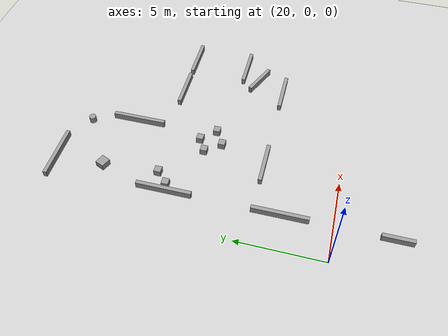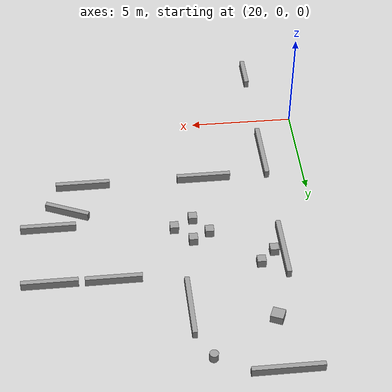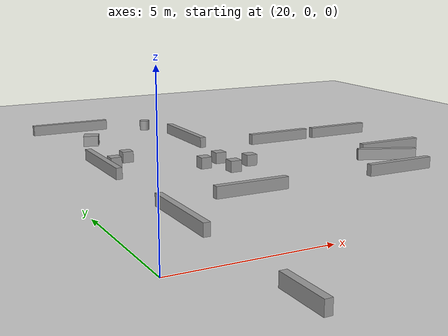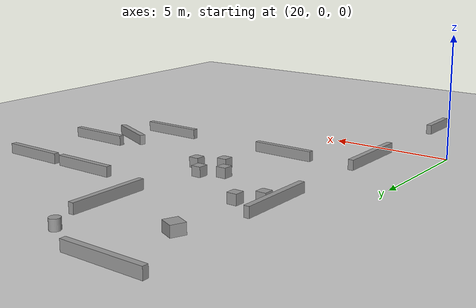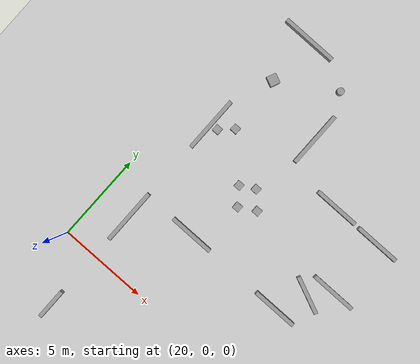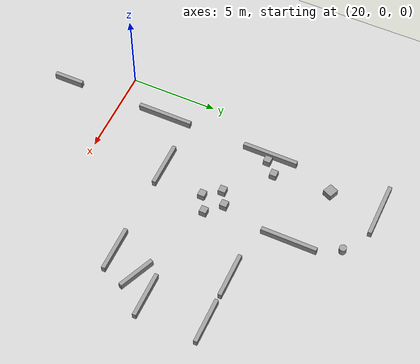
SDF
<sdf version="1.6">
 <world name="default">
  <model name="ground_plane">
   <static>1</static>
   <link name="link">
    <collision name="collision">
     <geometry><plane><normal>0 0 1</normal><size>100 100</size></plane></geometry>
     <surface>
      <contact><collide_bitmask>65535</collide_bitmask></contact>
      <friction><ode><mu>100</mu><mu2>50</mu2></ode></friction>
     </surface>
    </collision>
    <visual name="visual">
     <cast_shadows>0</cast_shadows>
     <geometry><plane><normal>0 0 1</normal><size>100 100</size></plane></geometry>
     <material>
      <script><uri>file://media/materials/scripts/gazebo.material</uri><name>Gazebo/Grey</name></script>
     </material>
    </visual>
   </link>
  </model>
  <model name="maze">
   <link name="link_10">
    <pose>9.80009 2.02423 9e-06 0 -0 0</pose>
    <inertial>
     <mass>1</mass>
     <inertia>
      <ixx>0.166667</ixx>
      <ixy>0</ixy>
      <ixz>0</ixz>
      <iyy>0.166667</iyy>
      <iyz>0</iyz>
      <izz>0.166667</izz>
     </inertia>
    </inertial>
    <visual name="visual">
     <geometry><box><size>0.4 0.4 0.4</size></box></geometry>
     <material>
      <lighting>1</lighting>
      <script><uri>file://media/materials/scripts/gazebo.material</uri><name>Gazebo/Grey</name></script>
      <ambient>0.3 0.3 0.3 1</ambient>
      <diffuse>0.7 0.7 0.7 1</diffuse>
      <specular>0.01 0.01 0.01 1</specular>
      <emissive>0 0 0 1</emissive>
     </material>
    </visual>
    <collision name="collision">
     <geometry><box><size>0.4 0.4 0.4</size></box></geometry>
     <surface>
      <friction>
       <ode><mu>1</mu><mu2>1</mu2><fdir1>0 0 0</fdir1><slip1>0</slip1><slip2>0</slip2></ode>
       <torsional>
        <coefficient>1</coefficient>
        <patch_radius>0</patch_radius>
        <surface_radius>0</surface_radius>
        <use_patch_radius>1</use_patch_radius>
        <ode><slip>0</slip></ode>
       </torsional>
      </friction>
      <bounce><restitution_coefficient>0</restitution_coefficient><threshold>1e+06</threshold></bounce>
      <contact>
       <collide_without_contact>0</collide_without_contact>
       <collide_without_contact_bitmask>1</collide_without_contact_bitmask>
       <collide_bitmask>1</collide_bitmask>
       <ode>
        <soft_cfm>0</soft_cfm>
        <soft_erp>0.2</soft_erp>
        <kp>1e+13</kp>
        <kd>1</kd>
        <max_vel>0.01</max_vel>
        <min_depth>0</min_depth>
       </ode>
       <bullet>
        <split_impulse>1</split_impulse>
        <split_impulse_penetration_threshold>-0.01</split_impulse_penetration_threshold>
        <soft_cfm>0</soft_cfm>
        <soft_erp>0.2</soft_erp>
        <kp>1e+13</kp>
        <kd>1</kd>
       </bullet>
      </contact>
     </surface>
    </collision>
   </link>
   <link name="link_11">
    <pose>6.31823 4.34711 9e-06 0 -0 0</pose>
    <inertial>
     <mass>1</mass>
     <inertia>
      <ixx>0.166667</ixx>
      <ixy>0</ixy>
      <ixz>0</ixz>
      <iyy>0.166667</iyy>
      <iyz>0</iyz>
      <izz>0.166667</izz>
     </inertia>
    </inertial>
    <visual name="visual">
     <geometry><box><size>0.4 0.4 0.4</size></box></geometry>
     <material>
      <lighting>1</lighting>
      <script><uri>file://media/materials/scripts/gazebo.material</uri><name>Gazebo/Grey</name></script>
      <ambient>0.3 0.3 0.3 1</ambient>
      <diffuse>0.7 0.7 0.7 1</diffuse>
      <specular>0.01 0.01 0.01 1</specular>
      <emissive>0 0 0 1</emissive>
     </material>
    </visual>
    <collision name="collision">
     <geometry><box><size>0.4 0.4 0.4</size></box></geometry>
     <surface>
      <friction>
       <ode><mu>1</mu><mu2>1</mu2><fdir1>0 0 0</fdir1><slip1>0</slip1><slip2>0</slip2></ode>
       <torsional>
        <coefficient>1</coefficient>
        <patch_radius>0</patch_radius>
        <surface_radius>0</surface_radius>
        <use_patch_radius>1</use_patch_radius>
        <ode><slip>0</slip></ode>
       </torsional>
      </friction>
      <bounce><restitution_coefficient>0</restitution_coefficient><threshold>1e+06</threshold></bounce>
      <contact>
       <collide_without_contact>0</collide_without_contact>
       <collide_without_contact_bitmask>1</collide_without_contact_bitmask>
       <collide_bitmask>1</collide_bitmask>
       <ode>
        <soft_cfm>0</soft_cfm>
        <soft_erp>0.2</soft_erp>
        <kp>1e+13</kp>
        <kd>1</kd>
        <max_vel>0.01</max_vel>
        <min_depth>0</min_depth>
       </ode>
       <bullet>
        <split_impulse>1</split_impulse>
        <split_impulse_penetration_threshold>-0.01</split_impulse_penetration_threshold>
        <soft_cfm>0</soft_cfm>
        <soft_erp>0.2</soft_erp>
        <kp>1e+13</kp>
        <kd>1</kd>
       </bullet>
      </contact>
     </surface>
    </collision>
   </link>
   <link name="link_12">
    <pose>7.00494 5.00129 9e-06 0 -0 0</pose>
    <inertial>
     <mass>1</mass>
     <inertia>
      <ixx>0.166667</ixx>
      <ixy>0</ixy>
      <ixz>0</ixz>
      <iyy>0.166667</iyy>
      <iyz>0</iyz>
      <izz>0.166667</izz>
     </inertia>
    </inertial>
    <visual name="visual">
     <geometry><box><size>0.4 0.4 0.4</size></box></geometry>
     <material>
      <lighting>1</lighting>
      <script><uri>file://media/materials/scripts/gazebo.material</uri><name>Gazebo/Grey</name></script>
      <ambient>0.3 0.3 0.3 1</ambient>
      <diffuse>0.7 0.7 0.7 1</diffuse>
      <specular>0.01 0.01 0.01 1</specular>
      <emissive>0 0 0 1</emissive>
     </material>
    </visual>
    <collision name="collision">
     <geometry><box><size>0.4 0.4 0.4</size></box></geometry>
     <surface>
      <friction>
       <ode><mu>1</mu><mu2>1</mu2><fdir1>0 0 0</fdir1><slip1>0</slip1><slip2>0</slip2></ode>
       <torsional>
        <coefficient>1</coefficient>
        <patch_radius>0</patch_radius>
        <surface_radius>0</surface_radius>
        <use_patch_radius>1</use_patch_radius>
        <ode><slip>0</slip></ode>
       </torsional>
      </friction>
      <bounce><restitution_coefficient>0</restitution_coefficient><threshold>1e+06</threshold></bounce>
      <contact>
       <collide_without_contact>0</collide_without_contact>
       <collide_without_contact_bitmask>1</collide_without_contact_bitmask>
       <collide_bitmask>1</collide_bitmask>
       <ode>
        <soft_cfm>0</soft_cfm>
        <soft_erp>0.2</soft_erp>
        <kp>1e+13</kp>
        <kd>1</kd>
        <max_vel>0.01</max_vel>
        <min_depth>0</min_depth>
       </ode>
       <bullet>
        <split_impulse>1</split_impulse>
        <split_impulse_penetration_threshold>-0.01</split_impulse_penetration_threshold>
        <soft_cfm>0</soft_cfm>
        <soft_erp>0.2</soft_erp>
        <kp>1e+13</kp>
        <kd>1</kd>
       </bullet>
      </contact>
     </surface>
    </collision>
   </link>
   <link name="link_14">
    <pose>10.7124 2.54643 9e-06 0 -0 0</pose>
    <inertial>
     <mass>1</mass>
     <inertia>
      <ixx>0.166667</ixx>
      <ixy>0</ixy>
      <ixz>0</ixz>
      <iyy>0.166667</iyy>
      <iyz>0</iyz>
      <izz>0.166667</izz>
     </inertia>
    </inertial>
    <visual name="visual">
     <geometry><box><size>0.4 0.4 0.4</size></box></geometry>
     <material>
      <lighting>1</lighting>
      <script><uri>file://media/materials/scripts/gazebo.material</uri><name>Gazebo/Grey</name></script>
      <ambient>0.3 0.3 0.3 1</ambient>
      <diffuse>0.7 0.7 0.7 1</diffuse>
      <specular>0.01 0.01 0.01 1</specular>
      <emissive>0 0 0 1</emissive>
     </material>
    </visual>
    <collision name="collision">
     <geometry><box><size>0.4 0.4 0.4</size></box></geometry>
     <surface>
      <friction>
       <ode><mu>1</mu><mu2>1</mu2><fdir1>0 0 0</fdir1><slip1>0</slip1><slip2>0</slip2></ode>
       <torsional>
        <coefficient>1</coefficient>
        <patch_radius>0</patch_radius>
        <surface_radius>0</surface_radius>
        <use_patch_radius>1</use_patch_radius>
        <ode><slip>0</slip></ode>
       </torsional>
      </friction>
      <bounce><restitution_coefficient>0</restitution_coefficient><threshold>1e+06</threshold></bounce>
      <contact>
       <collide_without_contact>0</collide_without_contact>
       <collide_without_contact_bitmask>1</collide_without_contact_bitmask>
       <collide_bitmask>1</collide_bitmask>
       <ode>
        <soft_cfm>0</soft_cfm>
        <soft_erp>0.2</soft_erp>
        <kp>1e+13</kp>
        <kd>1</kd>
        <max_vel>0.01</max_vel>
        <min_depth>0</min_depth>
       </ode>
       <bullet>
        <split_impulse>1</split_impulse>
        <split_impulse_penetration_threshold>-0.01</split_impulse_penetration_threshold>
        <soft_cfm>0</soft_cfm>
        <soft_erp>0.2</soft_erp>
        <kp>1e+13</kp>
        <kd>1</kd>
       </bullet>
      </contact>
     </surface>
    </collision>
   </link>
   <link name="link_4_clone_0_clone_clone_1_clone_0_clone_0_clone">
    <pose>6.79233 11.05 9e-06 0 -0 0</pose>
    <inertial>
     <mass>4.30693</mass>
     <inertia><ixx>0.46587</ixx><ixy>0</ixy><ixz>0</ixz><iyy>22.6991</iyy><iyz>0</iyz><izz>22.4471</izz></inertia>
    </inertial>
    <visual name="visual">
     <geometry><box><size>3.1558 0.218362 0.4</size></box></geometry>
     <material>
      <lighting>1</lighting>
      <script><uri>file://media/materials/scripts/gazebo.material</uri><name>Gazebo/Grey</name></script>
      <ambient>0.3 0.3 0.3 1</ambient>
      <diffuse>0.7 0.7 0.7 1</diffuse>
      <specular>0.01 0.01 0.01 1</specular>
      <emissive>0 0 0 1</emissive>
      <shader type="pixel"/>
     </material>
    </visual>
    <collision name="collision">
     <geometry><box><size>3.1558 0.218362 0.4</size></box></geometry>
     <surface>
      <friction>
       <ode><mu>1</mu><mu2>1</mu2><fdir1>0 0 0</fdir1><slip1>0</slip1><slip2>0</slip2></ode>
       <torsional>
        <coefficient>1</coefficient>
        <patch_radius>0</patch_radius>
        <surface_radius>0</surface_radius>
        <use_patch_radius>1</use_patch_radius>
        <ode><slip>0</slip></ode>
       </torsional>
      </friction>
      <bounce><restitution_coefficient>0</restitution_coefficient><threshold>1e+06</threshold></bounce>
      <contact>
       <collide_without_contact>0</collide_without_contact>
       <collide_without_contact_bitmask>1</collide_without_contact_bitmask>
       <collide_bitmask>1</collide_bitmask>
       <ode>
        <soft_cfm>0</soft_cfm>
        <soft_erp>0.2</soft_erp>
        <kp>1e+13</kp>
        <kd>1</kd>
        <max_vel>0.01</max_vel>
        <min_depth>0</min_depth>
       </ode>
       <bullet>
        <split_impulse>1</split_impulse>
        <split_impulse_penetration_threshold>-0.01</split_impulse_penetration_threshold>
        <soft_cfm>0</soft_cfm>
        <soft_erp>0.2</soft_erp>
        <kp>1e+13</kp>
        <kd>1</kd>
       </bullet>
      </contact>
     </surface>
    </collision>
   </link>
   <link name="link_4_clone_0_clone_clone_1_clone_clone_0">
    <pose>8.96944 -0.661983 9e-06 0 -0 0</pose>
    <inertial>
     <mass>3.50538</mass>
     <inertia><ixx>0.379168</ixx><ixy>0</ixy><ixz>0</ixz><iyy>12.3366</iyy><iyz>0</iyz><izz>12.1315</izz></inertia>
    </inertial>
    <visual name="visual">
     <geometry><box><size>2.56849 0.218362 0.4</size></box></geometry>
     <material>
      <lighting>1</lighting>
      <script><uri>file://media/materials/scripts/gazebo.material</uri><name>Gazebo/Grey</name></script>
      <ambient>0.3 0.3 0.3 1</ambient>
      <diffuse>0.7 0.7 0.7 1</diffuse>
      <specular>0.01 0.01 0.01 1</specular>
      <emissive>0 0 0 1</emissive>
      <shader type="pixel"/>
     </material>
    </visual>
    <collision name="collision">
     <geometry><box><size>2.56849 0.218362 0.4</size></box></geometry>
     <surface>
      <friction>
       <ode><mu>1</mu><mu2>1</mu2><fdir1>0 0 0</fdir1><slip1>0</slip1><slip2>0</slip2></ode>
       <torsional>
        <coefficient>1</coefficient>
        <patch_radius>0</patch_radius>
        <surface_radius>0</surface_radius>
        <use_patch_radius>1</use_patch_radius>
        <ode><slip>0</slip></ode>
       </torsional>
      </friction>
      <bounce><restitution_coefficient>0</restitution_coefficient><threshold>1e+06</threshold></bounce>
      <contact>
       <collide_without_contact>0</collide_without_contact>
       <collide_without_contact_bitmask>1</collide_without_contact_bitmask>
       <collide_bitmask>1</collide_bitmask>
       <ode>
        <soft_cfm>0</soft_cfm>
        <soft_erp>0.2</soft_erp>
        <kp>1e+13</kp>
        <kd>1</kd>
        <max_vel>0.01</max_vel>
        <min_depth>0</min_depth>
       </ode>
       <bullet>
        <split_impulse>1</split_impulse>
        <split_impulse_penetration_threshold>-0.01</split_impulse_penetration_threshold>
        <soft_cfm>0</soft_cfm>
        <soft_erp>0.2</soft_erp>
        <kp>1e+13</kp>
        <kd>1</kd>
       </bullet>
      </contact>
     </surface>
    </collision>
   </link>
   <link name="link_4_clone_0_clone_clone_1_clone_clone_0_clone">
    <pose>13.7042 5.43273 9e-06 0 -0 0</pose>
    <inertial>
     <mass>3.50538</mass>
     <inertia><ixx>0.379168</ixx><ixy>0</ixy><ixz>0</ixz><iyy>12.3366</iyy><iyz>0</iyz><izz>12.1315</izz></inertia>
    </inertial>
    <visual name="visual">
     <geometry><box><size>2.56849 0.218362 0.4</size></box></geometry>
     <material>
      <lighting>1</lighting>
      <script><uri>file://media/materials/scripts/gazebo.material</uri><name>Gazebo/Grey</name></script>
      <ambient>0.3 0.3 0.3 1</ambient>
      <diffuse>0.7 0.7 0.7 1</diffuse>
      <specular>0.01 0.01 0.01 1</specular>
      <emissive>0 0 0 1</emissive>
      <shader type="pixel"/>
     </material>
    </visual>
    <collision name="collision">
     <geometry><box><size>2.56849 0.218362 0.4</size></box></geometry>
     <surface>
      <friction>
       <ode><mu>1</mu><mu2>1</mu2><fdir1>0 0 0</fdir1><slip1>0</slip1><slip2>0</slip2></ode>
       <torsional>
        <coefficient>1</coefficient>
        <patch_radius>0</patch_radius>
        <surface_radius>0</surface_radius>
        <use_patch_radius>1</use_patch_radius>
        <ode><slip>0</slip></ode>
       </torsional>
      </friction>
      <bounce><restitution_coefficient>0</restitution_coefficient><threshold>1e+06</threshold></bounce>
      <contact>
       <collide_without_contact>0</collide_without_contact>
       <collide_without_contact_bitmask>1</collide_without_contact_bitmask>
       <collide_bitmask>1</collide_bitmask>
       <ode>
        <soft_cfm>0</soft_cfm>
        <soft_erp>0.2</soft_erp>
        <kp>1e+13</kp>
        <kd>1</kd>
        <max_vel>0.01</max_vel>
        <min_depth>0</min_depth>
       </ode>
       <bullet>
        <split_impulse>1</split_impulse>
        <split_impulse_penetration_threshold>-0.01</split_impulse_penetration_threshold>
        <soft_cfm>0</soft_cfm>
        <soft_erp>0.2</soft_erp>
        <kp>1e+13</kp>
        <kd>1</kd>
       </bullet>
      </contact>
     </surface>
    </collision>
   </link>
   <link name="link_4_clone_0_clone_clone_1_clone_clone_0_clone_0">
    <pose>16.5218 2.00661 9e-06 0 -0 0</pose>
    <inertial>
     <mass>3.50538</mass>
     <inertia><ixx>0.379168</ixx><ixy>0</ixy><ixz>0</ixz><iyy>12.3366</iyy><iyz>0</iyz><izz>12.1315</izz></inertia>
    </inertial>
    <visual name="visual">
     <geometry><box><size>2.56849 0.218362 0.4</size></box></geometry>
     <material>
      <lighting>1</lighting>
      <script><uri>file://media/materials/scripts/gazebo.material</uri><name>Gazebo/Grey</name></script>
      <ambient>0.3 0.3 0.3 1</ambient>
      <diffuse>0.7 0.7 0.7 1</diffuse>
      <specular>0.01 0.01 0.01 1</specular>
      <emissive>0 0 0 1</emissive>
      <shader type="pixel"/>
     </material>
    </visual>
    <collision name="collision">
     <geometry><box><size>2.56849 0.218362 0.4</size></box></geometry>
     <surface>
      <friction>
       <ode><mu>1</mu><mu2>1</mu2><fdir1>0 0 0</fdir1><slip1>0</slip1><slip2>0</slip2></ode>
       <torsional>
        <coefficient>1</coefficient>
        <patch_radius>0</patch_radius>
        <surface_radius>0</surface_radius>
        <use_patch_radius>1</use_patch_radius>
        <ode><slip>0</slip></ode>
       </torsional>
      </friction>
      <bounce><restitution_coefficient>0</restitution_coefficient><threshold>1e+06</threshold></bounce>
      <contact>
       <collide_without_contact>0</collide_without_contact>
       <collide_without_contact_bitmask>1</collide_without_contact_bitmask>
       <collide_bitmask>1</collide_bitmask>
       <ode>
        <soft_cfm>0</soft_cfm>
        <soft_erp>0.2</soft_erp>
        <kp>1e+13</kp>
        <kd>1</kd>
        <max_vel>0.01</max_vel>
        <min_depth>0</min_depth>
       </ode>
       <bullet>
        <split_impulse>1</split_impulse>
        <split_impulse_penetration_threshold>-0.01</split_impulse_penetration_threshold>
        <soft_cfm>0</soft_cfm>
        <soft_erp>0.2</soft_erp>
        <kp>1e+13</kp>
        <kd>1</kd>
       </bullet>
      </contact>
     </surface>
    </collision>
   </link>
   <link name="link_4_clone_0_clone_clone_1_clone_clone_0_clone_1">
    <pose>16.5551 5.42013 9e-06 0 -0 0</pose>
    <inertial>
     <mass>3.50538</mass>
     <inertia><ixx>0.379168</ixx><ixy>0</ixy><ixz>0</ixz><iyy>12.3366</iyy><iyz>0</iyz><izz>12.1315</izz></inertia>
    </inertial>
    <visual name="visual">
     <geometry><box><size>2.56849 0.218362 0.4</size></box></geometry>
     <material>
      <lighting>1</lighting>
      <script><uri>file://media/materials/scripts/gazebo.material</uri><name>Gazebo/Grey</name></script>
      <ambient>0.3 0.3 0.3 1</ambient>
      <diffuse>0.7 0.7 0.7 1</diffuse>
      <specular>0.01 0.01 0.01 1</specular>
      <emissive>0 0 0 1</emissive>
      <shader type="pixel"/>
     </material>
    </visual>
    <collision name="collision">
     <geometry><box><size>2.56849 0.218362 0.4</size></box></geometry>
     <surface>
      <friction>
       <ode><mu>1</mu><mu2>1</mu2><fdir1>0 0 0</fdir1><slip1>0</slip1><slip2>0</slip2></ode>
       <torsional>
        <coefficient>1</coefficient>
        <patch_radius>0</patch_radius>
        <surface_radius>0</surface_radius>
        <use_patch_radius>1</use_patch_radius>
        <ode><slip>0</slip></ode>
       </torsional>
      </friction>
      <bounce><restitution_coefficient>0</restitution_coefficient><threshold>1e+06</threshold></bounce>
      <contact>
       <collide_without_contact>0</collide_without_contact>
       <collide_without_contact_bitmask>1</collide_without_contact_bitmask>
       <collide_bitmask>1</collide_bitmask>
       <ode>
        <soft_cfm>0</soft_cfm>
        <soft_erp>0.2</soft_erp>
        <kp>1e+13</kp>
        <kd>1</kd>
        <max_vel>0.01</max_vel>
        <min_depth>0</min_depth>
       </ode>
       <bullet>
        <split_impulse>1</split_impulse>
        <split_impulse_penetration_threshold>-0.01</split_impulse_penetration_threshold>
        <soft_cfm>0</soft_cfm>
        <soft_erp>0.2</soft_erp>
        <kp>1e+13</kp>
        <kd>1</kd>
       </bullet>
      </contact>
     </surface>
    </collision>
   </link>
   <link name="link_4_clone_0_clone_clone_1_clone_clone_1">
    <pose>14.7931 -0.66198 9e-06 0 -0 0</pose>
    <inertial>
     <mass>3.50538</mass>
     <inertia><ixx>0.379168</ixx><ixy>0</ixy><ixz>0</ixz><iyy>12.3366</iyy><iyz>0</iyz><izz>12.1315</izz></inertia>
    </inertial>
    <visual name="visual">
     <geometry><box><size>2.56849 0.218362 0.4</size></box></geometry>
     <material>
      <lighting>1</lighting>
      <script><uri>file://media/materials/scripts/gazebo.material</uri><name>Gazebo/Grey</name></script>
      <ambient>0.3 0.3 0.3 1</ambient>
      <diffuse>0.7 0.7 0.7 1</diffuse>
      <specular>0.01 0.01 0.01 1</specular>
      <emissive>0 0 0 1</emissive>
      <shader type="pixel"/>
     </material>
    </visual>
    <collision name="collision">
     <geometry><box><size>2.56849 0.218362 0.4</size></box></geometry>
     <surface>
      <friction>
       <ode><mu>1</mu><mu2>1</mu2><fdir1>0 0 0</fdir1><slip1>0</slip1><slip2>0</slip2></ode>
       <torsional>
        <coefficient>1</coefficient>
        <patch_radius>0</patch_radius>
        <surface_radius>0</surface_radius>
        <use_patch_radius>1</use_patch_radius>
        <ode><slip>0</slip></ode>
       </torsional>
      </friction>
      <bounce><restitution_coefficient>0</restitution_coefficient><threshold>1e+06</threshold></bounce>
      <contact>
       <collide_without_contact>0</collide_without_contact>
       <collide_without_contact_bitmask>1</collide_without_contact_bitmask>
       <collide_bitmask>1</collide_bitmask>
       <ode>
        <soft_cfm>0</soft_cfm>
        <soft_erp>0.2</soft_erp>
        <kp>1e+13</kp>
        <kd>1</kd>
        <max_vel>0.01</max_vel>
        <min_depth>0</min_depth>
       </ode>
       <bullet>
        <split_impulse>1</split_impulse>
        <split_impulse_penetration_threshold>-0.01</split_impulse_penetration_threshold>
        <soft_cfm>0</soft_cfm>
        <soft_erp>0.2</soft_erp>
        <kp>1e+13</kp>
        <kd>1</kd>
       </bullet>
      </contact>
     </surface>
    </collision>
   </link>
   <link name="link_4_clone_1_clone_1_clone_0_clone">
    <pose>5.88859 -2.1218 9e-06 0 0 -1.56693</pose>
    <inertial>
     <mass>4.30693</mass>
     <inertia><ixx>0.46587</ixx><ixy>0</ixy><ixz>0</ixz><iyy>22.6991</iyy><iyz>0</iyz><izz>22.4471</izz></inertia>
    </inertial>
    <visual name="visual">
     <geometry><box><size>3.1558 0.218362 0.4</size></box></geometry>
     <material>
      <lighting>1</lighting>
      <script><uri>file://media/materials/scripts/gazebo.material</uri><name>Gazebo/Grey</name></script>
      <ambient>0.3 0.3 0.3 1</ambient>
      <diffuse>0.7 0.7 0.7 1</diffuse>
      <specular>0.01 0.01 0.01 1</specular>
      <emissive>0 0 0 1</emissive>
      <shader type="pixel"/>
     </material>
    </visual>
    <collision name="collision">
     <geometry><box><size>3.1558 0.218362 0.4</size></box></geometry>
     <surface>
      <friction>
       <ode><mu>1</mu><mu2>1</mu2><fdir1>0 0 0</fdir1><slip1>0</slip1><slip2>0</slip2></ode>
       <torsional>
        <coefficient>1</coefficient>
        <patch_radius>0</patch_radius>
        <surface_radius>0</surface_radius>
        <use_patch_radius>1</use_patch_radius>
        <ode><slip>0</slip></ode>
       </torsional>
      </friction>
      <bounce><restitution_coefficient>0</restitution_coefficient><threshold>1e+06</threshold></bounce>
      <contact>
       <collide_without_contact>0</collide_without_contact>
       <collide_without_contact_bitmask>1</collide_without_contact_bitmask>
       <collide_bitmask>1</collide_bitmask>
       <ode>
        <soft_cfm>0</soft_cfm>
        <soft_erp>0.2</soft_erp>
        <kp>1e+13</kp>
        <kd>1</kd>
        <max_vel>0.01</max_vel>
        <min_depth>0</min_depth>
       </ode>
       <bullet>
        <split_impulse>1</split_impulse>
        <split_impulse_penetration_threshold>-0.01</split_impulse_penetration_threshold>
        <soft_cfm>0</soft_cfm>
        <soft_erp>0.2</soft_erp>
        <kp>1e+13</kp>
        <kd>1</kd>
       </bullet>
      </contact>
     </surface>
    </collision>
   </link>
   <link name="link_4_clone_1_clone_1_clone_0_clone_clone">
    <pose>10.4715 7.35 9e-06 0 0 -1.56693</pose>
    <inertial>
     <mass>4.30693</mass>
     <inertia><ixx>0.46587</ixx><ixy>0</ixy><ixz>0</ixz><iyy>22.6991</iyy><iyz>0</iyz><izz>22.4471</izz></inertia>
    </inertial>
    <visual name="visual">
     <geometry><box><size>3.1558 0.218362 0.4</size></box></geometry>
     <material>
      <lighting>1</lighting>
      <script><uri>file://media/materials/scripts/gazebo.material</uri><name>Gazebo/Grey</name></script>
      <ambient>0.3 0.3 0.3 1</ambient>
      <diffuse>0.7 0.7 0.7 1</diffuse>
      <specular>0.01 0.01 0.01 1</specular>
      <emissive>0 0 0 1</emissive>
      <shader type="pixel"/>
     </material>
    </visual>
    <collision name="collision">
     <geometry><box><size>3.1558 0.218362 0.4</size></box></geometry>
     <surface>
      <friction>
       <ode><mu>1</mu><mu2>1</mu2><fdir1>0 0 0</fdir1><slip1>0</slip1><slip2>0</slip2></ode>
       <torsional>
        <coefficient>1</coefficient>
        <patch_radius>0</patch_radius>
        <surface_radius>0</surface_radius>
        <use_patch_radius>1</use_patch_radius>
        <ode><slip>0</slip></ode>
       </torsional>
      </friction>
      <bounce><restitution_coefficient>0</restitution_coefficient><threshold>1e+06</threshold></bounce>
      <contact>
       <collide_without_contact>0</collide_without_contact>
       <collide_without_contact_bitmask>1</collide_without_contact_bitmask>
       <collide_bitmask>1</collide_bitmask>
       <ode>
        <soft_cfm>0</soft_cfm>
        <soft_erp>0.2</soft_erp>
        <kp>1e+13</kp>
        <kd>1</kd>
        <max_vel>0.01</max_vel>
        <min_depth>0</min_depth>
       </ode>
       <bullet>
        <split_impulse>1</split_impulse>
        <split_impulse_penetration_threshold>-0.01</split_impulse_penetration_threshold>
        <soft_cfm>0</soft_cfm>
        <soft_erp>0.2</soft_erp>
        <kp>1e+13</kp>
        <kd>1</kd>
       </bullet>
      </contact>
     </surface>
    </collision>
   </link>
   <link name="link_4_clone_1_clone_1_clone_1">
    <pose>5.88859 4.32024 9e-06 0 0 -1.56693</pose>
    <inertial>
     <mass>4.30693</mass>
     <inertia><ixx>0.46587</ixx><ixy>0</ixy><ixz>0</ixz><iyy>22.6991</iyy><iyz>0</iyz><izz>22.4471</izz></inertia>
    </inertial>
    <visual name="visual">
     <geometry><box><size>3.1558 0.218362 0.4</size></box></geometry>
     <material>
      <lighting>1</lighting>
      <script><uri>file://media/materials/scripts/gazebo.material</uri><name>Gazebo/Grey</name></script>
      <ambient>0.3 0.3 0.3 1</ambient>
      <diffuse>0.7 0.7 0.7 1</diffuse>
      <specular>0.01 0.01 0.01 1</specular>
      <emissive>0 0 0 1</emissive>
      <shader type="pixel"/>
     </material>
    </visual>
    <collision name="collision">
     <geometry><box><size>3.1558 0.218362 0.4</size></box></geometry>
     <surface>
      <friction>
       <ode><mu>1</mu><mu2>1</mu2><fdir1>0 0 0</fdir1><slip1>0</slip1><slip2>0</slip2></ode>
       <torsional>
        <coefficient>1</coefficient>
        <patch_radius>0</patch_radius>
        <surface_radius>0</surface_radius>
        <use_patch_radius>1</use_patch_radius>
        <ode><slip>0</slip></ode>
       </torsional>
      </friction>
      <bounce><restitution_coefficient>0</restitution_coefficient><threshold>1e+06</threshold></bounce>
      <contact>
       <collide_without_contact>0</collide_without_contact>
       <collide_without_contact_bitmask>1</collide_without_contact_bitmask>
       <collide_bitmask>1</collide_bitmask>
       <ode>
        <soft_cfm>0</soft_cfm>
        <soft_erp>0.2</soft_erp>
        <kp>1e+13</kp>
        <kd>1</kd>
        <max_vel>0.01</max_vel>
        <min_depth>0</min_depth>
       </ode>
       <bullet>
        <split_impulse>1</split_impulse>
        <split_impulse_penetration_threshold>-0.01</split_impulse_penetration_threshold>
        <soft_cfm>0</soft_cfm>
        <soft_erp>0.2</soft_erp>
        <kp>1e+13</kp>
        <kd>1</kd>
       </bullet>
      </contact>
     </surface>
    </collision>
   </link>
   <link name="link_4_clone_1_clone_1_clone_clone_0_clone_1">
    <pose>5.88859 -8.25 9e-06 0 0 -1.56693</pose>
    <inertial>
     <mass>2.3361</mass>
     <inertia><ixx>0.25269</ixx><ixy>0</ixy><ixz>0</ixz><iyy>3.75965</iyy><iyz>0</iyz><izz>3.62299</izz></inertia>
    </inertial>
    <visual name="visual">
     <geometry><box><size>1.71172 0.218362 0.4</size></box></geometry>
     <material>
      <lighting>1</lighting>
      <script><uri>file://media/materials/scripts/gazebo.material</uri><name>Gazebo/Grey</name></script>
      <ambient>0.3 0.3 0.3 1</ambient>
      <diffuse>0.7 0.7 0.7 1</diffuse>
      <specular>0.01 0.01 0.01 1</specular>
      <emissive>0 0 0 1</emissive>
      <shader type="pixel"/>
     </material>
    </visual>
    <collision name="collision">
     <geometry><box><size>1.71172 0.218362 0.4</size></box></geometry>
     <surface>
      <friction>
       <ode><mu>1</mu><mu2>1</mu2><fdir1>0 0 0</fdir1><slip1>0</slip1><slip2>0</slip2></ode>
       <torsional>
        <coefficient>1</coefficient>
        <patch_radius>0</patch_radius>
        <surface_radius>0</surface_radius>
        <use_patch_radius>1</use_patch_radius>
        <ode><slip>0</slip></ode>
       </torsional>
      </friction>
      <bounce><restitution_coefficient>0</restitution_coefficient><threshold>1e+06</threshold></bounce>
      <contact>
       <collide_without_contact>0</collide_without_contact>
       <collide_without_contact_bitmask>1</collide_without_contact_bitmask>
       <collide_bitmask>1</collide_bitmask>
       <ode>
        <soft_cfm>0</soft_cfm>
        <soft_erp>0.2</soft_erp>
        <kp>1e+13</kp>
        <kd>1</kd>
        <max_vel>0.01</max_vel>
        <min_depth>0</min_depth>
       </ode>
       <bullet>
        <split_impulse>1</split_impulse>
        <split_impulse_penetration_threshold>-0.01</split_impulse_penetration_threshold>
        <soft_cfm>0</soft_cfm>
        <soft_erp>0.2</soft_erp>
        <kp>1e+13</kp>
        <kd>1</kd>
       </bullet>
      </contact>
     </surface>
    </collision>
   </link>
   <link name="link_4_clone_1_clone_1_clone_clone_0_clone_clone_clone">
    <pose>15.5955 0.999523 -0.000417 0 0 -0.405308</pose>
    <inertial>
     <mass>2.91384</mass>
     <inertia><ixx>0.315184</ixx><ixy>0</ixy><ixz>0</ixz><iyy>7.16085</iyy><iyz>0</iyz><izz>6.99039</izz></inertia>
    </inertial>
    <visual name="visual">
     <geometry><box><size>2.13505 0.218362 0.4</size></box></geometry>
     <material>
      <lighting>1</lighting>
      <script><uri>file://media/materials/scripts/gazebo.material</uri><name>Gazebo/Grey</name></script>
      <ambient>0.3 0.3 0.3 1</ambient>
      <diffuse>0.7 0.7 0.7 1</diffuse>
      <specular>0.01 0.01 0.01 1</specular>
      <emissive>0 0 0 1</emissive>
      <shader type="pixel"/>
     </material>
    </visual>
    <collision name="collision">
     <geometry><box><size>2.13505 0.218362 0.4</size></box></geometry>
     <surface>
      <friction>
       <ode><mu>1</mu><mu2>1</mu2><fdir1>0 0 0</fdir1><slip1>0</slip1><slip2>0</slip2></ode>
       <torsional>
        <coefficient>1</coefficient>
        <patch_radius>0</patch_radius>
        <surface_radius>0</surface_radius>
        <use_patch_radius>1</use_patch_radius>
        <ode><slip>0</slip></ode>
       </torsional>
      </friction>
      <bounce><restitution_coefficient>0</restitution_coefficient><threshold>1e+06</threshold></bounce>
      <contact>
       <collide_without_contact>0</collide_without_contact>
       <collide_without_contact_bitmask>1</collide_without_contact_bitmask>
       <collide_bitmask>1</collide_bitmask>
       <ode>
        <soft_cfm>0</soft_cfm>
        <soft_erp>0.2</soft_erp>
        <kp>1e+13</kp>
        <kd>1</kd>
        <max_vel>0.01</max_vel>
        <min_depth>0</min_depth>
       </ode>
       <bullet>
        <split_impulse>1</split_impulse>
        <split_impulse_penetration_threshold>-0.01</split_impulse_penetration_threshold>
        <soft_cfm>0</soft_cfm>
        <soft_erp>0.2</soft_erp>
        <kp>1e+13</kp>
        <kd>1</kd>
       </bullet>
      </contact>
     </surface>
    </collision>
   </link>
   <link name="link_6_clone_clone_0_clone_clone">
    <pose>6.7785 8.2182 9e-06 0 0 -0.406538</pose>
    <inertial>
     <mass>1.94722</mass>
     <inertia><ixx>0.463684</ixx><ixy>0</ixy><ixz>0</ixz><iyy>0.4935</iyy><iyz>0</iyz><izz>0.632648</izz></inertia>
    </inertial>
    <visual name="visual">
     <geometry><box><size>0.571492 0.545164 0.4</size></box></geometry>
     <material>
      <lighting>1</lighting>
      <script><uri>file://media/materials/scripts/gazebo.material</uri><name>Gazebo/Grey</name></script>
      <ambient>0.3 0.3 0.3 1</ambient>
      <diffuse>0.7 0.7 0.7 1</diffuse>
      <specular>0.01 0.01 0.01 1</specular>
      <emissive>0 0 0 1</emissive>
      <shader type="pixel"/>
     </material>
    </visual>
    <collision name="collision">
     <geometry><box><size>0.571492 0.545164 0.4</size></box></geometry>
     <surface>
      <friction>
       <ode><mu>1</mu><mu2>1</mu2><fdir1>0 0 0</fdir1><slip1>0</slip1><slip2>0</slip2></ode>
       <torsional>
        <coefficient>1</coefficient>
        <patch_radius>0</patch_radius>
        <surface_radius>0</surface_radius>
        <use_patch_radius>1</use_patch_radius>
        <ode><slip>0</slip></ode>
       </torsional>
      </friction>
      <bounce><restitution_coefficient>0</restitution_coefficient><threshold>1e+06</threshold></bounce>
      <contact>
       <collide_without_contact>0</collide_without_contact>
       <collide_without_contact_bitmask>1</collide_without_contact_bitmask>
       <collide_bitmask>1</collide_bitmask>
       <ode>
        <soft_cfm>0</soft_cfm>
        <soft_erp>0.2</soft_erp>
        <kp>1e+13</kp>
        <kd>1</kd>
        <max_vel>0.01</max_vel>
        <min_depth>0</min_depth>
       </ode>
       <bullet>
        <split_impulse>1</split_impulse>
        <split_impulse_penetration_threshold>-0.01</split_impulse_penetration_threshold>
        <soft_cfm>0</soft_cfm>
        <soft_erp>0.2</soft_erp>
        <kp>1e+13</kp>
        <kd>1</kd>
       </bullet>
      </contact>
     </surface>
    </collision>
   </link>
   <link name="link_7">
    <pose>9.80695 10.1149 9e-06 0 -0 0</pose>
    <inertial>
     <mass>1</mass>
     <inertia><ixx>0.145833</ixx><ixy>0</ixy><ixz>0</ixz><iyy>0.145833</iyy><iyz>0</iyz><izz>0.125</izz></inertia>
    </inertial>
    <visual name="visual">
     <geometry><cylinder><radius>0.2</radius><length>0.4</length></cylinder></geometry>
     <material>
      <lighting>1</lighting>
      <script><uri>file://media/materials/scripts/gazebo.material</uri><name>Gazebo/Grey</name></script>
      <ambient>0.3 0.3 0.3 1</ambient>
      <diffuse>0.7 0.7 0.7 1</diffuse>
      <specular>0.01 0.01 0.01 1</specular>
      <emissive>0 0 0 1</emissive>
     </material>
    </visual>
    <collision name="collision">
     <geometry><cylinder><radius>0.2</radius><length>0.4</length></cylinder></geometry>
     <surface>
      <friction>
       <ode><mu>1</mu><mu2>1</mu2><fdir1>0 0 0</fdir1><slip1>0</slip1><slip2>0</slip2></ode>
       <torsional>
        <coefficient>1</coefficient>
        <patch_radius>0</patch_radius>
        <surface_radius>0</surface_radius>
        <use_patch_radius>1</use_patch_radius>
        <ode><slip>0</slip></ode>
       </torsional>
      </friction>
      <bounce><restitution_coefficient>0</restitution_coefficient><threshold>1e+06</threshold></bounce>
      <contact>
       <collide_without_contact>0</collide_without_contact>
       <collide_without_contact_bitmask>1</collide_without_contact_bitmask>
       <collide_bitmask>1</collide_bitmask>
       <ode>
        <soft_cfm>0</soft_cfm>
        <soft_erp>0.2</soft_erp>
        <kp>1e+13</kp>
        <kd>1</kd>
        <max_vel>0.01</max_vel>
        <min_depth>0</min_depth>
       </ode>
       <bullet>
        <split_impulse>1</split_impulse>
        <split_impulse_penetration_threshold>-0.01</split_impulse_penetration_threshold>
        <soft_cfm>0</soft_cfm>
        <soft_erp>0.2</soft_erp>
        <kp>1e+13</kp>
        <kd>1</kd>
       </bullet>
      </contact>
     </surface>
    </collision>
   </link>
   <link name="link_8">
    <pose>9.90915 3.36462 9e-06 0 -0 0</pose>
    <inertial>
     <mass>1</mass>
     <inertia>
      <ixx>0.166667</ixx>
      <ixy>0</ixy>
      <ixz>0</ixz>
      <iyy>0.166667</iyy>
      <iyz>0</iyz>
      <izz>0.166667</izz>
     </inertia>
    </inertial>
    <visual name="visual">
     <geometry><box><size>0.4 0.4 0.4</size></box></geometry>
     <material>
      <lighting>1</lighting>
      <script><uri>file://media/materials/scripts/gazebo.material</uri><name>Gazebo/Grey</name></script>
      <ambient>0.3 0.3 0.3 1</ambient>
      <diffuse>0.7 0.7 0.7 1</diffuse>
      <specular>0.01 0.01 0.01 1</specular>
      <emissive>0 0 0 1</emissive>
     </material>
    </visual>
    <collision name="collision">
     <geometry><box><size>0.4 0.4 0.4</size></box></geometry>
     <surface>
      <friction>
       <ode><mu>1</mu><mu2>1</mu2><fdir1>0 0 0</fdir1><slip1>0</slip1><slip2>0</slip2></ode>
       <torsional>
        <coefficient>1</coefficient>
        <patch_radius>0</patch_radius>
        <surface_radius>0</surface_radius>
        <use_patch_radius>1</use_patch_radius>
        <ode><slip>0</slip></ode>
       </torsional>
      </friction>
      <bounce><restitution_coefficient>0</restitution_coefficient><threshold>1e+06</threshold></bounce>
      <contact>
       <collide_without_contact>0</collide_without_contact>
       <collide_without_contact_bitmask>1</collide_without_contact_bitmask>
       <collide_bitmask>1</collide_bitmask>
       <ode>
        <soft_cfm>0</soft_cfm>
        <soft_erp>0.2</soft_erp>
        <kp>1e+13</kp>
        <kd>1</kd>
        <max_vel>0.01</max_vel>
        <min_depth>0</min_depth>
       </ode>
       <bullet>
        <split_impulse>1</split_impulse>
        <split_impulse_penetration_threshold>-0.01</split_impulse_penetration_threshold>
        <soft_cfm>0</soft_cfm>
        <soft_erp>0.2</soft_erp>
        <kp>1e+13</kp>
        <kd>1</kd>
       </bullet>
      </contact>
     </surface>
    </collision>
   </link>
   <link name="link_9">
    <pose>9.11198 2.92169 9e-06 0 -0 0</pose>
    <inertial>
     <mass>1</mass>
     <inertia>
      <ixx>0.166667</ixx>
      <ixy>0</ixy>
      <ixz>0</ixz>
      <iyy>0.166667</iyy>
      <iyz>0</iyz>
      <izz>0.166667</izz>
     </inertia>
    </inertial>
    <visual name="visual">
     <geometry><box><size>0.4 0.4 0.4</size></box></geometry>
     <material>
      <lighting>1</lighting>
      <script><uri>file://media/materials/scripts/gazebo.material</uri><name>Gazebo/Grey</name></script>
      <ambient>0.3 0.3 0.3 1</ambient>
      <diffuse>0.7 0.7 0.7 1</diffuse>
      <specular>0.01 0.01 0.01 1</specular>
      <emissive>0 0 0 1</emissive>
     </material>
    </visual>
    <collision name="collision">
     <geometry><box><size>0.4 0.4 0.4</size></box></geometry>
     <surface>
      <friction>
       <ode><mu>1</mu><mu2>1</mu2><fdir1>0 0 0</fdir1><slip1>0</slip1><slip2>0</slip2></ode>
       <torsional>
        <coefficient>1</coefficient>
        <patch_radius>0</patch_radius>
        <surface_radius>0</surface_radius>
        <use_patch_radius>1</use_patch_radius>
        <ode><slip>0</slip></ode>
       </torsional>
      </friction>
      <bounce><restitution_coefficient>0</restitution_coefficient><threshold>1e+06</threshold></bounce>
      <contact>
       <collide_without_contact>0</collide_without_contact>
       <collide_without_contact_bitmask>1</collide_without_contact_bitmask>
       <collide_bitmask>1</collide_bitmask>
       <ode>
        <soft_cfm>0</soft_cfm>
        <soft_erp>0.2</soft_erp>
        <kp>1e+13</kp>
        <kd>1</kd>
        <max_vel>0.01</max_vel>
        <min_depth>0</min_depth>
       </ode>
       <bullet>
        <split_impulse>1</split_impulse>
        <split_impulse_penetration_threshold>-0.01</split_impulse_penetration_threshold>
        <soft_cfm>0</soft_cfm>
        <soft_erp>0.2</soft_erp>
        <kp>1e+13</kp>
        <kd>1</kd>
       </bullet>
      </contact>
     </surface>
    </collision>
   </link>
   <static>0</static>
   <pose>16 5 0.499991 0 -0 0</pose>
  </model>
 </world>
</sdf>
